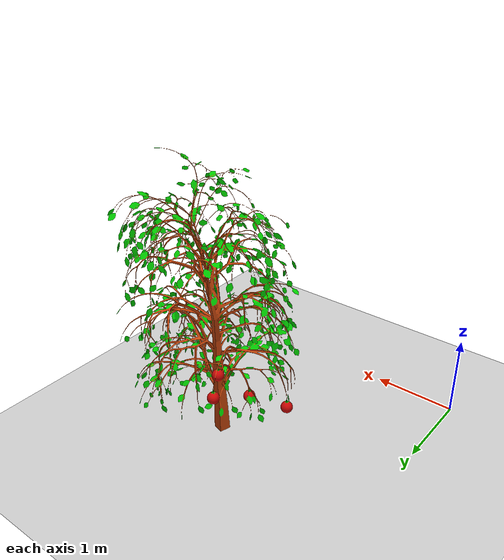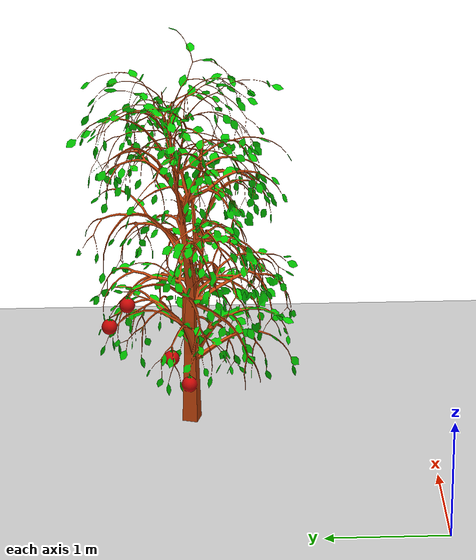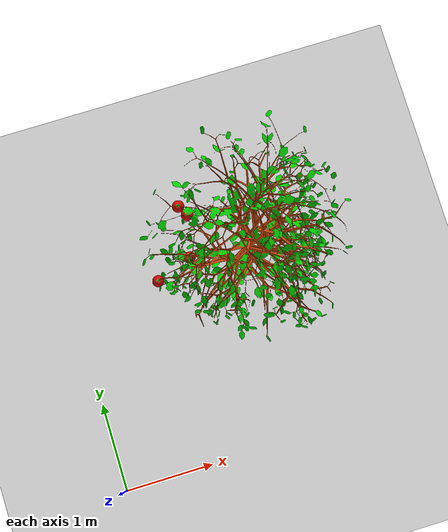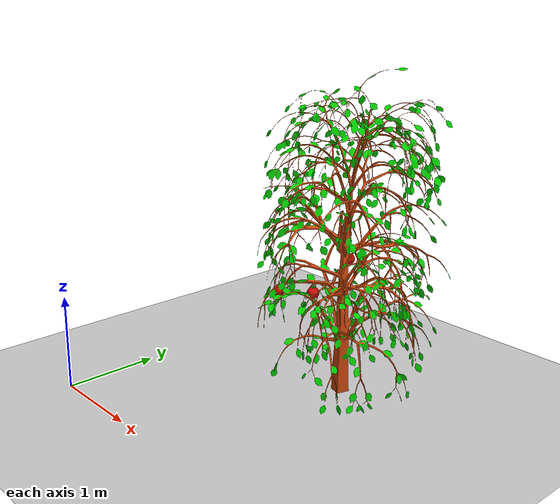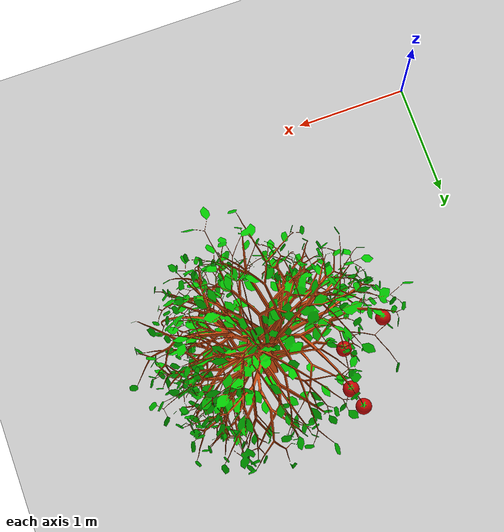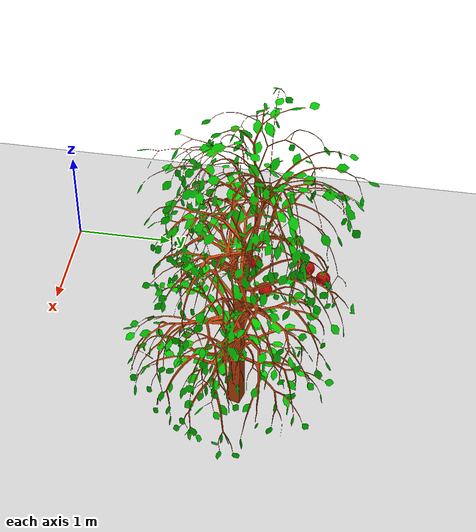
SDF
<?xml version="1.0"?>
<sdf version="1.6">
  <world name="default">
    <include>
      <uri>model://ground_plane</uri>
    </include>
    <include>
      <uri>model://sun</uri>
    </include>
    <model name="my_world_model">
      <static>true</static>
      <pose>0 0 0.05 0 0 0</pose>
      <link name="body">
        <visual name="visual">
          <geometry>
            <mesh>
              <uri>file:///home/imbatman/smdw_ws/src/smdw_robot_base/meshes/apple_tree_2.dae</uri>
            </mesh>
          </geometry>
        </visual>
        <collision name="collision">
          <geometry>
            <mesh>
              <uri>file:///home/imbatman/smdw_ws/src/smdw_robot_base/meshes/apple_tree_2.dae</uri>
            </mesh>
          </geometry>
          <surface>
              <friction>
                  <ode>
                      <mu>1.0</mu>
                      <mu2>1.0</mu2>
                  </ode>
              </friction>
          </surface>
        </collision>
      </link>
    </model>
    <light name="extra_light" type="point">
    <pose>0 0 10 0 0 0</pose>
    <diffuse>1 1 1 1</diffuse>
    <specular>0.5 0.5 0.5 1</specular>
    <attenuation>
      <range>20</range>
      <linear>0.01</linear>
      <constant>0.9</constant>
      <quadratic>0.001</quadratic>
    </attenuation>
  </light>
  </world>
  <physics name="ode">
    <max_step_size>0.001</max_step_size>
    <real_time_factor>1.0</real_time_factor>
    <real_time_update_rate>1000</real_time_update_rate>
</physics>
</sdf>
